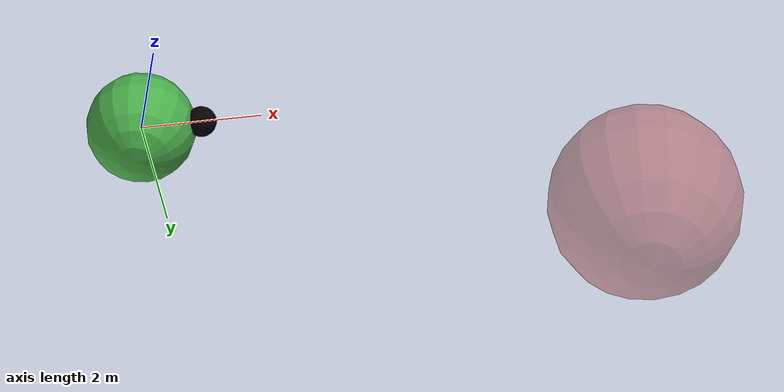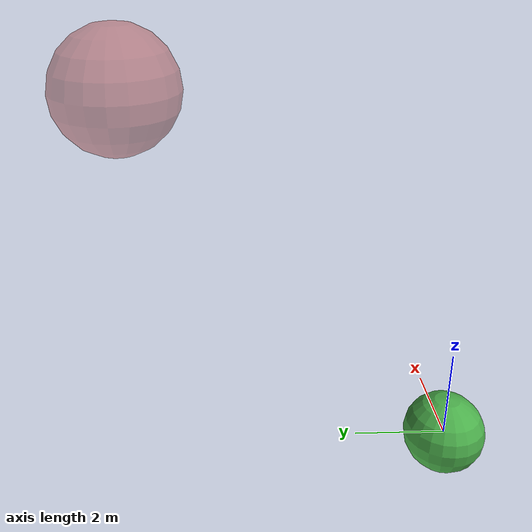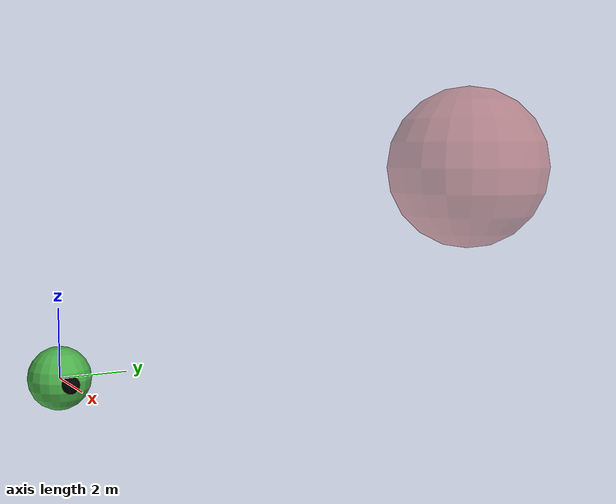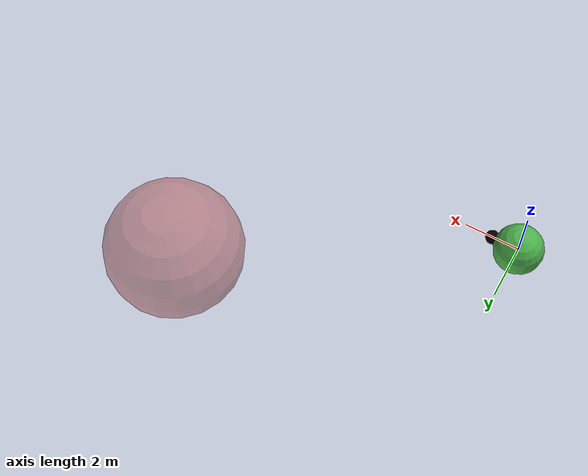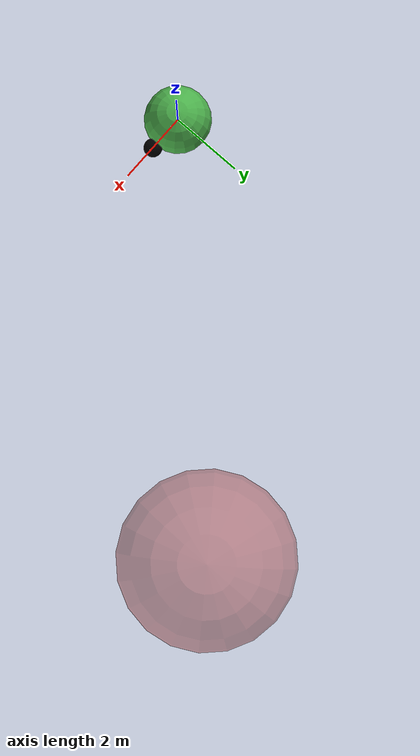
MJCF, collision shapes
<mujoco model="ant">
  <compiler angle="degree" coordinate="local" inertiafromgeom="true"/>
  <option timestep="0.01" iterations="4" />
  <custom>
    <!-- brax custom params -->
    <numeric data="1000" name="constraint_limit_stiffness"/>
    <numeric data="4000" name="constraint_stiffness"/>
    <numeric data="10" name="constraint_ang_damping"/>
    <numeric data="20" name="constraint_vel_damping"/>
    <numeric data="0.5" name="joint_scale_pos"/>
    <numeric data="0.2" name="joint_scale_ang"/>
    <numeric data="0.0" name="ang_damping"/>
    <numeric data="1" name="spring_mass_scale"/>
    <numeric data="1" name="spring_inertia_scale"/>
    <numeric data="15" name="solver_maxls"/>
  </custom>
  <default>
    <joint armature="1" damping="1" limited="true"/>
    <geom contype="0" conaffinity="0" condim="3" density="5.0" friction="1 0.5 0.5"/>

    <default class="cf2">
      <default class="visual">
        <geom group="2" type="mesh" contype="0" conaffinity="0"/>
      </default>
      <default class="collision">
        <geom group="3" type="mesh"/>
      </default>
      <site group="5"/>
    </default>
  </default>
  <asset>
    <material name="polished_plastic" rgba="0.631 0.659 0.678 1"/>
    <material name="polished_gold" rgba="0.969 0.878 0.6 1"/>
    <material name="medium_gloss_plastic" rgba="0.109 0.184 0.0 1"/>
    <material name="propeller_plastic" rgba="0.792 0.820 0.933 1"/>
    <material name="white" rgba="1 1 1 1"/>
    <material name="body_frame_plastic" rgba="0.102 0.102 0.102 1"/>
    <material name="burnished_chrome" rgba="0.898 0.898 0.898 1"/>

    <mesh file="/home/tassos/phd/research/second-project/task-aware-skill-composition/task_aware_skill_composition/brax/envs/assets/cf2/meshes/cf2_0.obj" scale="10 10 10"/>
    <mesh file="/home/tassos/phd/research/second-project/task-aware-skill-composition/task_aware_skill_composition/brax/envs/assets/cf2/meshes/cf2_1.obj" scale="10 10 10"/>
    <mesh file="/home/tassos/phd/research/second-project/task-aware-skill-composition/task_aware_skill_composition/brax/envs/assets/cf2/meshes/cf2_2.obj" scale="10 10 10"/>
    <mesh file="/home/tassos/phd/research/second-project/task-aware-skill-composition/task_aware_skill_composition/brax/envs/assets/cf2/meshes/cf2_3.obj" scale="10 10 10"/>
    <mesh file="/home/tassos/phd/research/second-project/task-aware-skill-composition/task_aware_skill_composition/brax/envs/assets/cf2/meshes/cf2_4.obj" scale="10 10 10"/>
    <mesh file="/home/tassos/phd/research/second-project/task-aware-skill-composition/task_aware_skill_composition/brax/envs/assets/cf2/meshes/cf2_5.obj" scale="10 10 10"/>
    <mesh file="/home/tassos/phd/research/second-project/task-aware-skill-composition/task_aware_skill_composition/brax/envs/assets/cf2/meshes/cf2_6.obj" scale="10 10 10"/>
    <mesh file="/home/tassos/phd/research/second-project/task-aware-skill-composition/task_aware_skill_composition/brax/envs/assets/cf2/meshes/cf2_collision_0.obj" scale="10 10 10"/>
    <mesh file="/home/tassos/phd/research/second-project/task-aware-skill-composition/task_aware_skill_composition/brax/envs/assets/cf2/meshes/cf2_collision_1.obj" scale="10 10 10"/>
    <mesh file="/home/tassos/phd/research/second-project/task-aware-skill-composition/task_aware_skill_composition/brax/envs/assets/cf2/meshes/cf2_collision_2.obj" scale="10 10 10"/>
    <mesh file="/home/tassos/phd/research/second-project/task-aware-skill-composition/task_aware_skill_composition/brax/envs/assets/cf2/meshes/cf2_collision_3.obj" scale="10 10 10"/>
    <mesh file="/home/tassos/phd/research/second-project/task-aware-skill-composition/task_aware_skill_composition/brax/envs/assets/cf2/meshes/cf2_collision_4.obj" scale="10 10 10"/>
    <mesh file="/home/tassos/phd/research/second-project/task-aware-skill-composition/task_aware_skill_composition/brax/envs/assets/cf2/meshes/cf2_collision_5.obj" scale="10 10 10"/>
    <mesh file="/home/tassos/phd/research/second-project/task-aware-skill-composition/task_aware_skill_composition/brax/envs/assets/cf2/meshes/cf2_collision_6.obj" scale="10 10 10"/>
    <mesh file="/home/tassos/phd/research/second-project/task-aware-skill-composition/task_aware_skill_composition/brax/envs/assets/cf2/meshes/cf2_collision_7.obj" scale="10 10 10"/>
    <mesh file="/home/tassos/phd/research/second-project/task-aware-skill-composition/task_aware_skill_composition/brax/envs/assets/cf2/meshes/cf2_collision_8.obj" scale="10 10 10"/>
    <mesh file="/home/tassos/phd/research/second-project/task-aware-skill-composition/task_aware_skill_composition/brax/envs/assets/cf2/meshes/cf2_collision_9.obj" scale="10 10 10"/>
    <mesh file="/home/tassos/phd/research/second-project/task-aware-skill-composition/task_aware_skill_composition/brax/envs/assets/cf2/meshes/cf2_collision_10.obj" scale="10 10 10"/>
    <mesh file="/home/tassos/phd/research/second-project/task-aware-skill-composition/task_aware_skill_composition/brax/envs/assets/cf2/meshes/cf2_collision_11.obj" scale="10 10 10"/>
    <mesh file="/home/tassos/phd/research/second-project/task-aware-skill-composition/task_aware_skill_composition/brax/envs/assets/cf2/meshes/cf2_collision_12.obj" scale="10 10 10"/>
    <mesh file="/home/tassos/phd/research/second-project/task-aware-skill-composition/task_aware_skill_composition/brax/envs/assets/cf2/meshes/cf2_collision_13.obj" scale="10 10 10"/>
    <mesh file="/home/tassos/phd/research/second-project/task-aware-skill-composition/task_aware_skill_composition/brax/envs/assets/cf2/meshes/cf2_collision_14.obj" scale="10 10 10"/>
    <mesh file="/home/tassos/phd/research/second-project/task-aware-skill-composition/task_aware_skill_composition/brax/envs/assets/cf2/meshes/cf2_collision_15.obj" scale="10 10 10"/>
    <mesh file="/home/tassos/phd/research/second-project/task-aware-skill-composition/task_aware_skill_composition/brax/envs/assets/cf2/meshes/cf2_collision_16.obj" scale="10 10 10"/>
    <mesh file="/home/tassos/phd/research/second-project/task-aware-skill-composition/task_aware_skill_composition/brax/envs/assets/cf2/meshes/cf2_collision_17.obj" scale="10 10 10"/>
    <mesh file="/home/tassos/phd/research/second-project/task-aware-skill-composition/task_aware_skill_composition/brax/envs/assets/cf2/meshes/cf2_collision_18.obj" scale="10 10 10"/>
    <mesh file="/home/tassos/phd/research/second-project/task-aware-skill-composition/task_aware_skill_composition/brax/envs/assets/cf2/meshes/cf2_collision_19.obj" scale="10 10 10"/>
    <mesh file="/home/tassos/phd/research/second-project/task-aware-skill-composition/task_aware_skill_composition/brax/envs/assets/cf2/meshes/cf2_collision_20.obj" scale="10 10 10"/>
    <mesh file="/home/tassos/phd/research/second-project/task-aware-skill-composition/task_aware_skill_composition/brax/envs/assets/cf2/meshes/cf2_collision_21.obj" scale="10 10 10"/>
    <mesh file="/home/tassos/phd/research/second-project/task-aware-skill-composition/task_aware_skill_composition/brax/envs/assets/cf2/meshes/cf2_collision_22.obj" scale="10 10 10"/>
    <mesh file="/home/tassos/phd/research/second-project/task-aware-skill-composition/task_aware_skill_composition/brax/envs/assets/cf2/meshes/cf2_collision_23.obj" scale="10 10 10"/>
    <mesh file="/home/tassos/phd/research/second-project/task-aware-skill-composition/task_aware_skill_composition/brax/envs/assets/cf2/meshes/cf2_collision_24.obj" scale="10 10 10"/>
    <mesh file="/home/tassos/phd/research/second-project/task-aware-skill-composition/task_aware_skill_composition/brax/envs/assets/cf2/meshes/cf2_collision_25.obj" scale="10 10 10"/>
    <mesh file="/home/tassos/phd/research/second-project/task-aware-skill-composition/task_aware_skill_composition/brax/envs/assets/cf2/meshes/cf2_collision_26.obj" scale="10 10 10"/>
    <mesh file="/home/tassos/phd/research/second-project/task-aware-skill-composition/task_aware_skill_composition/brax/envs/assets/cf2/meshes/cf2_collision_27.obj" scale="10 10 10"/>
    <mesh file="/home/tassos/phd/research/second-project/task-aware-skill-composition/task_aware_skill_composition/brax/envs/assets/cf2/meshes/cf2_collision_28.obj" scale="10 10 10"/>
    <mesh file="/home/tassos/phd/research/second-project/task-aware-skill-composition/task_aware_skill_composition/brax/envs/assets/cf2/meshes/cf2_collision_29.obj" scale="10 10 10"/>
    <mesh file="/home/tassos/phd/research/second-project/task-aware-skill-composition/task_aware_skill_composition/brax/envs/assets/cf2/meshes/cf2_collision_30.obj" scale="10 10 10"/>
    <mesh file="/home/tassos/phd/research/second-project/task-aware-skill-composition/task_aware_skill_composition/brax/envs/assets/cf2/meshes/cf2_collision_31.obj" scale="10 10 10"/>

    <texture builtin="gradient" height="100" rgb1="1 1 1" rgb2="1 1 1" type="skybox" width="100"/>
    <texture builtin="flat" height="1278" mark="cross" markrgb="1 1 1" name="texgeom" random="0.01" rgb1="0.8 0.6 0.4" rgb2="0.8 0.6 0.4" type="cube" width="127"/>
    <texture builtin="checker" height="100" name="texplane" rgb1="0.8 0.8 0.8" rgb2="0.8 0.8 0.8" type="2d" width="100"/>
    <material name="MatPlane" reflectance="0.0" shininess="1" specular="1" texrepeat="60 60" texture="texplane"/>
    <material name="geom" texture="texgeom" texuniform="true"/>
  </asset>

  <worldbody>
    <light cutoff="100" diffuse="1 1 1" dir="-0 0 -1.3" directional="true" exponent="1" pos="0 0 1.3" specular=".1 .1 .1"/>
    <light cutoff="100" diffuse="1 1 1" dir="0 1.3 0" directional="true" exponent="1" pos="8 -5.5 8" specular=".1 .1 .1"/>
    <camera name="overview" pos="8 -5.5 8" xyaxes="1 0 0 0 0 1" fovy="110"/>

    <include file="/home/tassos/phd/research/second-project/task-aware-skill-composition/task_aware_skill_composition/brax/envs/assets/cf2/cf2_drone.xml"/>

    <body name="center_obstacle">
        <geom conaffinity="0" contype="0" pos="8 8 6" size="2.0" rgba="0.7 0.3 0.3 0.5" type="sphere"/>
    </body>

    <body name="target" pos="0 0 0.01" gravcomp="1">
        <joint armature="0" axis="1 0 0" damping="0" limited="true" name="target_x" pos="0 0 0" range="-100 100" stiffness="0" type="slide"/>
        <joint armature="0" axis="0 1 0" damping="0" limited="true" name="target_y" pos="0 0 0" range="-100 100" stiffness="0" type="slide"/>
        <joint armature="0" axis="0 0 1" damping="0" limited="true" name="target_z" pos="0 0 0" range="-100 100" stiffness="0" type="slide"/>
        <geom conaffinity="0" contype="0" name="target" pos="0 0 0" rgba="0.3 0.7 0.3 1.0" size=".9" type="sphere"  mass="1.0"/>
    </body>
  </worldbody>

  <actuator>
    <motor name="move_x" joint="obj_slidex" gear="5 0 0"/>
    <motor name="move_y" joint="obj_slidey" gear="5 0 0"/>
    <motor name="move_z" joint="obj_slidez" gear="5 0 0"/>
  </actuator>
</mujoco>

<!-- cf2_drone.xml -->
<mujoco model="cf2_drone">
  <body name="cf2" pos="1.0 0.0 0.0" childclass="cf2" gravcomp="1">
    <camera name="track" mode="trackcom" pos="0 -3 0.3" xyaxes="1 0 0 0 0 1"/>

    <geom name="torso_geom" pos="0 0 0" rgba="0.0 0.0 0.0 0.0" size="0.25" type="sphere" conaffinity="1" contype="1"/>

    <geom type="mesh" mesh="cf2_0" rgba="0.7 0.5 0.3 1.0"/>
    <geom type="mesh" mesh="cf2_1" rgba="0.7 0.5 0.3 1.0"/>
    <geom type="mesh" mesh="cf2_2" rgba="0.7 0.5 0.3 1.0"/>
    <geom type="mesh" mesh="cf2_3" rgba="0.7 0.5 0.3 1.0"/>
    <geom type="mesh" mesh="cf2_4" rgba="0.7 0.5 0.3 1.0"/>
    <geom type="mesh" mesh="cf2_5" rgba="0.7 0.5 0.3 1.0"/>
    <geom type="mesh" mesh="cf2_6" rgba="0.7 0.5 0.3 1.0"/>

    <joint name="obj_slidex" type="slide" pos="0 0 0" axis="1 0 0" range="-100 100" damping="0.0"/>
    <joint name="obj_slidey" type="slide" pos="0 0 0" axis="0 1 0" range="-100 100" damping="0.0"/>
    <joint name="obj_slidez" type="slide" pos="0 0 0" axis="0 0 1" range="-100 100" damping="0.0"/>
  </body>
</mujoco>
